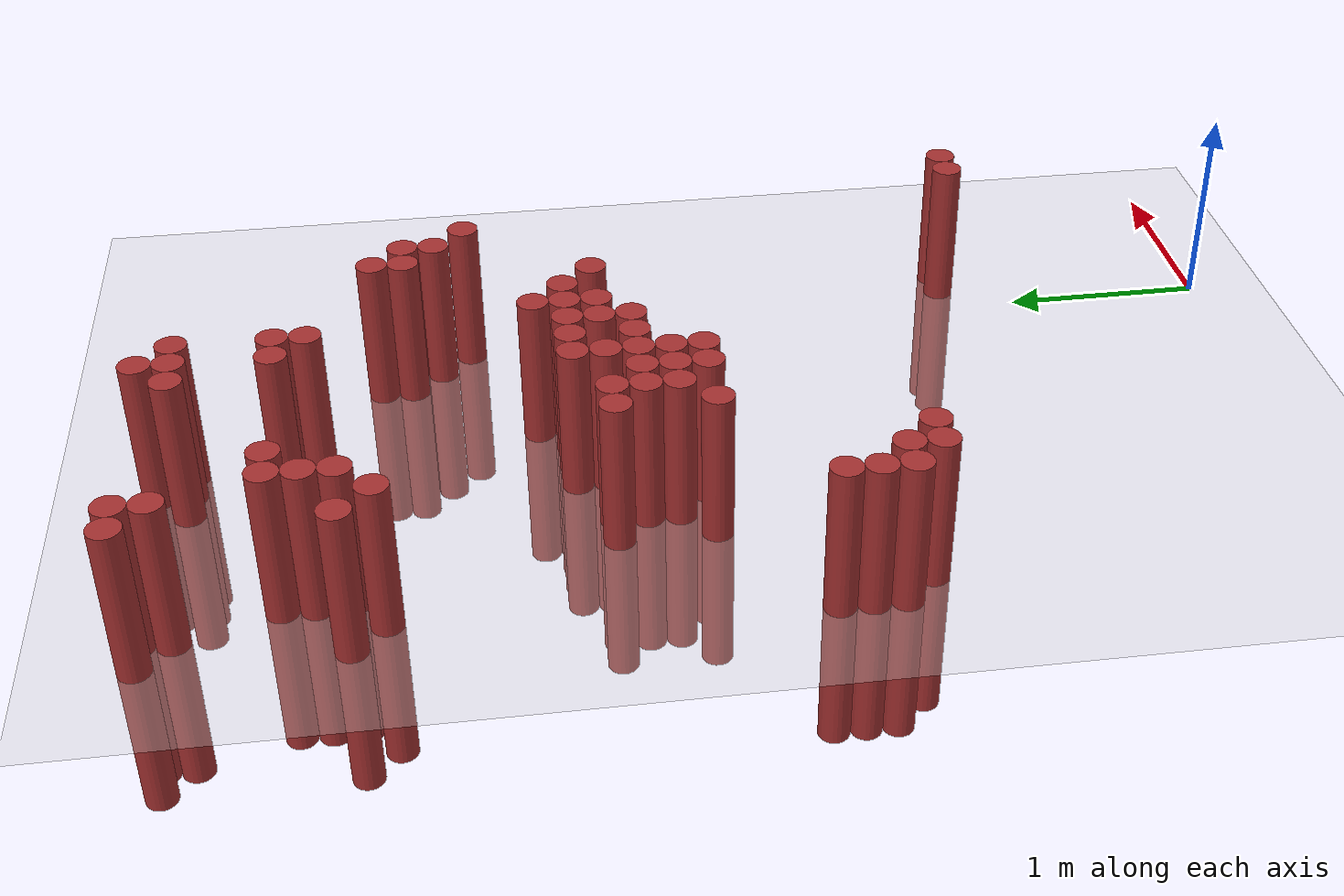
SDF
<sdf version="1.6">
 <world name="default">
  <model name="ground_plane">
   <static>1</static>
   <link name="link">
    <collision name="collision">
     <geometry><plane><normal>0 0 1</normal><size>100 100</size></plane></geometry>
     <surface><friction><ode><mu>100</mu><mu2>50</mu2></ode></friction></surface>
    </collision>
    <visual name="visual">
     <cast_shadows>0</cast_shadows>
     <geometry><plane><normal>0 0 1</normal><size>100 100</size></plane></geometry>
     <material>
      <script><uri>file://media/materials/scripts/gazebo.material</uri><name>Gazebo/Grey</name></script>
     </material>
    </visual>
   </link>
  </model>
  <model name="unit_cylinder_318">
   <static>1</static>
   <pose>-2.375000 2.125000 0.000000 0.000000 0.000000 0.000000</pose>
   <link name="link">
    <inertial>
     <mass>1</mass>
     <inertia><ixx>0.145833</ixx><ixy>0</ixy><ixz>0</ixz><iyy>0.145833</iyy><iyz>0</iyz><izz>0.125</izz></inertia>
    </inertial>
    <collision name="collision">
     <geometry><cylinder><radius>0.075000</radius><length>1.5</length></cylinder></geometry>
    </collision>
    <visual name="visual">
     <geometry><cylinder><radius>0.075000</radius><length>1.5</length></cylinder></geometry>
     <material>
      <ambient>0.648000 0.192000 0.192000 1</ambient>
      <diffuse>0.648000 0.192000 0.192000 1</diffuse>
     </material>
     <material>
      <script><name>Gazebo/Grey</name><uri>file://media/materials/scripts/gazebo.material</uri></script>
     </material>
    </visual>
   </link>
  </model>
  <model name="unit_cylinder_319">
   <static>1</static>
   <pose>-2.375000 2.275000 0.000000 0.000000 0.000000 0.000000</pose>
   <link name="link">
    <inertial>
     <mass>1</mass>
     <inertia><ixx>0.145833</ixx><ixy>0</ixy><ixz>0</ixz><iyy>0.145833</iyy><iyz>0</iyz><izz>0.125</izz></inertia>
    </inertial>
    <collision name="collision">
     <geometry><cylinder><radius>0.075000</radius><length>1.5</length></cylinder></geometry>
    </collision>
    <visual name="visual">
     <geometry><cylinder><radius>0.075000</radius><length>1.5</length></cylinder></geometry>
     <material>
      <ambient>0.648000 0.192000 0.192000 1</ambient>
      <diffuse>0.648000 0.192000 0.192000 1</diffuse>
     </material>
     <material>
      <script><name>Gazebo/Grey</name><uri>file://media/materials/scripts/gazebo.material</uri></script>
     </material>
    </visual>
   </link>
  </model>
  <model name="unit_cylinder_320">
   <static>1</static>
   <pose>-2.375000 2.425000 0.000000 0.000000 0.000000 0.000000</pose>
   <link name="link">
    <inertial>
     <mass>1</mass>
     <inertia><ixx>0.145833</ixx><ixy>0</ixy><ixz>0</ixz><iyy>0.145833</iyy><iyz>0</iyz><izz>0.125</izz></inertia>
    </inertial>
    <collision name="collision">
     <geometry><cylinder><radius>0.075000</radius><length>1.5</length></cylinder></geometry>
    </collision>
    <visual name="visual">
     <geometry><cylinder><radius>0.075000</radius><length>1.5</length></cylinder></geometry>
     <material>
      <ambient>0.648000 0.192000 0.192000 1</ambient>
      <diffuse>0.648000 0.192000 0.192000 1</diffuse>
     </material>
     <material>
      <script><name>Gazebo/Grey</name><uri>file://media/materials/scripts/gazebo.material</uri></script>
     </material>
    </visual>
   </link>
  </model>
  <model name="unit_cylinder_321">
   <static>1</static>
   <pose>-2.375000 4.525000 0.000000 0.000000 0.000000 0.000000</pose>
   <link name="link">
    <inertial>
     <mass>1</mass>
     <inertia><ixx>0.145833</ixx><ixy>0</ixy><ixz>0</ixz><iyy>0.145833</iyy><iyz>0</iyz><izz>0.125</izz></inertia>
    </inertial>
    <collision name="collision">
     <geometry><cylinder><radius>0.075000</radius><length>1.5</length></cylinder></geometry>
    </collision>
    <visual name="visual">
     <geometry><cylinder><radius>0.075000</radius><length>1.5</length></cylinder></geometry>
     <material>
      <ambient>0.648000 0.192000 0.192000 1</ambient>
      <diffuse>0.648000 0.192000 0.192000 1</diffuse>
     </material>
     <material>
      <script><name>Gazebo/Grey</name><uri>file://media/materials/scripts/gazebo.material</uri></script>
     </material>
    </visual>
   </link>
  </model>
  <model name="unit_cylinder_322">
   <static>1</static>
   <pose>-2.375000 5.425000 0.000000 0.000000 0.000000 0.000000</pose>
   <link name="link">
    <inertial>
     <mass>1</mass>
     <inertia><ixx>0.145833</ixx><ixy>0</ixy><ixz>0</ixz><iyy>0.145833</iyy><iyz>0</iyz><izz>0.125</izz></inertia>
    </inertial>
    <collision name="collision">
     <geometry><cylinder><radius>0.075000</radius><length>1.5</length></cylinder></geometry>
    </collision>
    <visual name="visual">
     <geometry><cylinder><radius>0.075000</radius><length>1.5</length></cylinder></geometry>
     <material>
      <ambient>0.648000 0.192000 0.192000 1</ambient>
      <diffuse>0.648000 0.192000 0.192000 1</diffuse>
     </material>
     <material>
      <script><name>Gazebo/Grey</name><uri>file://media/materials/scripts/gazebo.material</uri></script>
     </material>
    </visual>
   </link>
  </model>
  <model name="unit_cylinder_324">
   <static>1</static>
   <pose>-2.225000 1.975000 0.000000 0.000000 0.000000 0.000000</pose>
   <link name="link">
    <inertial>
     <mass>1</mass>
     <inertia><ixx>0.145833</ixx><ixy>0</ixy><ixz>0</ixz><iyy>0.145833</iyy><iyz>0</iyz><izz>0.125</izz></inertia>
    </inertial>
    <collision name="collision">
     <geometry><cylinder><radius>0.075000</radius><length>1.5</length></cylinder></geometry>
    </collision>
    <visual name="visual">
     <geometry><cylinder><radius>0.075000</radius><length>1.5</length></cylinder></geometry>
     <material>
      <ambient>0.648000 0.192000 0.192000 1</ambient>
      <diffuse>0.648000 0.192000 0.192000 1</diffuse>
     </material>
     <material>
      <script><name>Gazebo/Grey</name><uri>file://media/materials/scripts/gazebo.material</uri></script>
     </material>
    </visual>
   </link>
  </model>
  <model name="unit_cylinder_325">
   <static>1</static>
   <pose>-2.225000 2.125000 0.000000 0.000000 0.000000 0.000000</pose>
   <link name="link">
    <inertial>
     <mass>1</mass>
     <inertia><ixx>0.145833</ixx><ixy>0</ixy><ixz>0</ixz><iyy>0.145833</iyy><iyz>0</iyz><izz>0.125</izz></inertia>
    </inertial>
    <collision name="collision">
     <geometry><cylinder><radius>0.075000</radius><length>1.5</length></cylinder></geometry>
    </collision>
    <visual name="visual">
     <geometry><cylinder><radius>0.075000</radius><length>1.5</length></cylinder></geometry>
     <material>
      <ambient>0.648000 0.192000 0.192000 1</ambient>
      <diffuse>0.648000 0.192000 0.192000 1</diffuse>
     </material>
     <material>
      <script><name>Gazebo/Grey</name><uri>file://media/materials/scripts/gazebo.material</uri></script>
     </material>
    </visual>
   </link>
  </model>
  <model name="unit_cylinder_326">
   <static>1</static>
   <pose>-2.225000 4.375000 0.000000 0.000000 0.000000 0.000000</pose>
   <link name="link">
    <inertial>
     <mass>1</mass>
     <inertia><ixx>0.145833</ixx><ixy>0</ixy><ixz>0</ixz><iyy>0.145833</iyy><iyz>0</iyz><izz>0.125</izz></inertia>
    </inertial>
    <collision name="collision">
     <geometry><cylinder><radius>0.075000</radius><length>1.5</length></cylinder></geometry>
    </collision>
    <visual name="visual">
     <geometry><cylinder><radius>0.075000</radius><length>1.5</length></cylinder></geometry>
     <material>
      <ambient>0.648000 0.192000 0.192000 1</ambient>
      <diffuse>0.648000 0.192000 0.192000 1</diffuse>
     </material>
     <material>
      <script><name>Gazebo/Grey</name><uri>file://media/materials/scripts/gazebo.material</uri></script>
     </material>
    </visual>
   </link>
  </model>
  <model name="unit_cylinder_327">
   <static>1</static>
   <pose>-2.225000 5.275000 0.000000 0.000000 0.000000 0.000000</pose>
   <link name="link">
    <inertial>
     <mass>1</mass>
     <inertia><ixx>0.145833</ixx><ixy>0</ixy><ixz>0</ixz><iyy>0.145833</iyy><iyz>0</iyz><izz>0.125</izz></inertia>
    </inertial>
    <collision name="collision">
     <geometry><cylinder><radius>0.075000</radius><length>1.5</length></cylinder></geometry>
    </collision>
    <visual name="visual">
     <geometry><cylinder><radius>0.075000</radius><length>1.5</length></cylinder></geometry>
     <material>
      <ambient>0.648000 0.192000 0.192000 1</ambient>
      <diffuse>0.648000 0.192000 0.192000 1</diffuse>
     </material>
     <material>
      <script><name>Gazebo/Grey</name><uri>file://media/materials/scripts/gazebo.material</uri></script>
     </material>
    </visual>
   </link>
  </model>
  <model name="unit_cylinder_328">
   <static>1</static>
   <pose>-2.225000 5.425000 0.000000 0.000000 0.000000 0.000000</pose>
   <link name="link">
    <inertial>
     <mass>1</mass>
     <inertia><ixx>0.145833</ixx><ixy>0</ixy><ixz>0</ixz><iyy>0.145833</iyy><iyz>0</iyz><izz>0.125</izz></inertia>
    </inertial>
    <collision name="collision">
     <geometry><cylinder><radius>0.075000</radius><length>1.5</length></cylinder></geometry>
    </collision>
    <visual name="visual">
     <geometry><cylinder><radius>0.075000</radius><length>1.5</length></cylinder></geometry>
     <material>
      <ambient>0.648000 0.192000 0.192000 1</ambient>
      <diffuse>0.648000 0.192000 0.192000 1</diffuse>
     </material>
     <material>
      <script><name>Gazebo/Grey</name><uri>file://media/materials/scripts/gazebo.material</uri></script>
     </material>
    </visual>
   </link>
  </model>
  <model name="unit_cylinder_331">
   <static>1</static>
   <pose>-2.075000 1.975000 0.000000 0.000000 0.000000 0.000000</pose>
   <link name="link">
    <inertial>
     <mass>1</mass>
     <inertia><ixx>0.145833</ixx><ixy>0</ixy><ixz>0</ixz><iyy>0.145833</iyy><iyz>0</iyz><izz>0.125</izz></inertia>
    </inertial>
    <collision name="collision">
     <geometry><cylinder><radius>0.075000</radius><length>1.5</length></cylinder></geometry>
    </collision>
    <visual name="visual">
     <geometry><cylinder><radius>0.075000</radius><length>1.5</length></cylinder></geometry>
     <material>
      <ambient>0.648000 0.192000 0.192000 1</ambient>
      <diffuse>0.648000 0.192000 0.192000 1</diffuse>
     </material>
     <material>
      <script><name>Gazebo/Grey</name><uri>file://media/materials/scripts/gazebo.material</uri></script>
     </material>
    </visual>
   </link>
  </model>
  <model name="unit_cylinder_332">
   <static>1</static>
   <pose>-2.075000 4.525000 0.000000 0.000000 0.000000 0.000000</pose>
   <link name="link">
    <inertial>
     <mass>1</mass>
     <inertia><ixx>0.145833</ixx><ixy>0</ixy><ixz>0</ixz><iyy>0.145833</iyy><iyz>0</iyz><izz>0.125</izz></inertia>
    </inertial>
    <collision name="collision">
     <geometry><cylinder><radius>0.075000</radius><length>1.5</length></cylinder></geometry>
    </collision>
    <visual name="visual">
     <geometry><cylinder><radius>0.075000</radius><length>1.5</length></cylinder></geometry>
     <material>
      <ambient>0.648000 0.192000 0.192000 1</ambient>
      <diffuse>0.648000 0.192000 0.192000 1</diffuse>
     </material>
     <material>
      <script><name>Gazebo/Grey</name><uri>file://media/materials/scripts/gazebo.material</uri></script>
     </material>
    </visual>
   </link>
  </model>
  <model name="unit_cylinder_333">
   <static>1</static>
   <pose>-2.075000 4.675000 0.000000 0.000000 0.000000 0.000000</pose>
   <link name="link">
    <inertial>
     <mass>1</mass>
     <inertia><ixx>0.145833</ixx><ixy>0</ixy><ixz>0</ixz><iyy>0.145833</iyy><iyz>0</iyz><izz>0.125</izz></inertia>
    </inertial>
    <collision name="collision">
     <geometry><cylinder><radius>0.075000</radius><length>1.5</length></cylinder></geometry>
    </collision>
    <visual name="visual">
     <geometry><cylinder><radius>0.075000</radius><length>1.5</length></cylinder></geometry>
     <material>
      <ambient>0.648000 0.192000 0.192000 1</ambient>
      <diffuse>0.648000 0.192000 0.192000 1</diffuse>
     </material>
     <material>
      <script><name>Gazebo/Grey</name><uri>file://media/materials/scripts/gazebo.material</uri></script>
     </material>
    </visual>
   </link>
  </model>
  <model name="unit_cylinder_334">
   <static>1</static>
   <pose>-2.075000 4.825000 0.000000 0.000000 0.000000 0.000000</pose>
   <link name="link">
    <inertial>
     <mass>1</mass>
     <inertia><ixx>0.145833</ixx><ixy>0</ixy><ixz>0</ixz><iyy>0.145833</iyy><iyz>0</iyz><izz>0.125</izz></inertia>
    </inertial>
    <collision name="collision">
     <geometry><cylinder><radius>0.075000</radius><length>1.5</length></cylinder></geometry>
    </collision>
    <visual name="visual">
     <geometry><cylinder><radius>0.075000</radius><length>1.5</length></cylinder></geometry>
     <material>
      <ambient>0.648000 0.192000 0.192000 1</ambient>
      <diffuse>0.648000 0.192000 0.192000 1</diffuse>
     </material>
     <material>
      <script><name>Gazebo/Grey</name><uri>file://media/materials/scripts/gazebo.material</uri></script>
     </material>
    </visual>
   </link>
  </model>
  <model name="unit_cylinder_335">
   <static>1</static>
   <pose>-1.925000 4.825000 0.000000 0.000000 0.000000 0.000000</pose>
   <link name="link">
    <inertial>
     <mass>1</mass>
     <inertia><ixx>0.145833</ixx><ixy>0</ixy><ixz>0</ixz><iyy>0.145833</iyy><iyz>0</iyz><izz>0.125</izz></inertia>
    </inertial>
    <collision name="collision">
     <geometry><cylinder><radius>0.075000</radius><length>1.5</length></cylinder></geometry>
    </collision>
    <visual name="visual">
     <geometry><cylinder><radius>0.075000</radius><length>1.5</length></cylinder></geometry>
     <material>
      <ambient>0.648000 0.192000 0.192000 1</ambient>
      <diffuse>0.648000 0.192000 0.192000 1</diffuse>
     </material>
     <material>
      <script><name>Gazebo/Grey</name><uri>file://media/materials/scripts/gazebo.material</uri></script>
     </material>
    </visual>
   </link>
  </model>
  <model name="unit_cylinder_336">
   <static>1</static>
   <pose>-1.775000 2.875000 0.000000 0.000000 0.000000 0.000000</pose>
   <link name="link">
    <inertial>
     <mass>1</mass>
     <inertia><ixx>0.145833</ixx><ixy>0</ixy><ixz>0</ixz><iyy>0.145833</iyy><iyz>0</iyz><izz>0.125</izz></inertia>
    </inertial>
    <collision name="collision">
     <geometry><cylinder><radius>0.075000</radius><length>1.5</length></cylinder></geometry>
    </collision>
    <visual name="visual">
     <geometry><cylinder><radius>0.075000</radius><length>1.5</length></cylinder></geometry>
     <material>
      <ambient>0.648000 0.192000 0.192000 1</ambient>
      <diffuse>0.648000 0.192000 0.192000 1</diffuse>
     </material>
     <material>
      <script><name>Gazebo/Grey</name><uri>file://media/materials/scripts/gazebo.material</uri></script>
     </material>
    </visual>
   </link>
  </model>
  <model name="unit_cylinder_337">
   <static>1</static>
   <pose>-1.775000 3.325000 0.000000 0.000000 0.000000 0.000000</pose>
   <link name="link">
    <inertial>
     <mass>1</mass>
     <inertia><ixx>0.145833</ixx><ixy>0</ixy><ixz>0</ixz><iyy>0.145833</iyy><iyz>0</iyz><izz>0.125</izz></inertia>
    </inertial>
    <collision name="collision">
     <geometry><cylinder><radius>0.075000</radius><length>1.5</length></cylinder></geometry>
    </collision>
    <visual name="visual">
     <geometry><cylinder><radius>0.075000</radius><length>1.5</length></cylinder></geometry>
     <material>
      <ambient>0.648000 0.192000 0.192000 1</ambient>
      <diffuse>0.648000 0.192000 0.192000 1</diffuse>
     </material>
     <material>
      <script><name>Gazebo/Grey</name><uri>file://media/materials/scripts/gazebo.material</uri></script>
     </material>
    </visual>
   </link>
  </model>
  <model name="unit_cylinder_338">
   <static>1</static>
   <pose>-1.625000 3.025000 0.000000 0.000000 0.000000 0.000000</pose>
   <link name="link">
    <inertial>
     <mass>1</mass>
     <inertia><ixx>0.145833</ixx><ixy>0</ixy><ixz>0</ixz><iyy>0.145833</iyy><iyz>0</iyz><izz>0.125</izz></inertia>
    </inertial>
    <collision name="collision">
     <geometry><cylinder><radius>0.075000</radius><length>1.5</length></cylinder></geometry>
    </collision>
    <visual name="visual">
     <geometry><cylinder><radius>0.075000</radius><length>1.5</length></cylinder></geometry>
     <material>
      <ambient>0.648000 0.192000 0.192000 1</ambient>
      <diffuse>0.648000 0.192000 0.192000 1</diffuse>
     </material>
     <material>
      <script><name>Gazebo/Grey</name><uri>file://media/materials/scripts/gazebo.material</uri></script>
     </material>
    </visual>
   </link>
  </model>
  <model name="unit_cylinder_339">
   <static>1</static>
   <pose>-1.625000 3.175000 0.000000 0.000000 0.000000 0.000000</pose>
   <link name="link">
    <inertial>
     <mass>1</mass>
     <inertia><ixx>0.145833</ixx><ixy>0</ixy><ixz>0</ixz><iyy>0.145833</iyy><iyz>0</iyz><izz>0.125</izz></inertia>
    </inertial>
    <collision name="collision">
     <geometry><cylinder><radius>0.075000</radius><length>1.5</length></cylinder></geometry>
    </collision>
    <visual name="visual">
     <geometry><cylinder><radius>0.075000</radius><length>1.5</length></cylinder></geometry>
     <material>
      <ambient>0.648000 0.192000 0.192000 1</ambient>
      <diffuse>0.648000 0.192000 0.192000 1</diffuse>
     </material>
     <material>
      <script><name>Gazebo/Grey</name><uri>file://media/materials/scripts/gazebo.material</uri></script>
     </material>
    </visual>
   </link>
  </model>
  <model name="unit_cylinder_340">
   <static>1</static>
   <pose>-1.625000 3.325000 0.000000 0.000000 0.000000 0.000000</pose>
   <link name="link">
    <inertial>
     <mass>1</mass>
     <inertia><ixx>0.145833</ixx><ixy>0</ixy><ixz>0</ixz><iyy>0.145833</iyy><iyz>0</iyz><izz>0.125</izz></inertia>
    </inertial>
    <collision name="collision">
     <geometry><cylinder><radius>0.075000</radius><length>1.5</length></cylinder></geometry>
    </collision>
    <visual name="visual">
     <geometry><cylinder><radius>0.075000</radius><length>1.5</length></cylinder></geometry>
     <material>
      <ambient>0.648000 0.192000 0.192000 1</ambient>
      <diffuse>0.648000 0.192000 0.192000 1</diffuse>
     </material>
     <material>
      <script><name>Gazebo/Grey</name><uri>file://media/materials/scripts/gazebo.material</uri></script>
     </material>
    </visual>
   </link>
  </model>
  <model name="unit_cylinder_341">
   <static>1</static>
   <pose>-1.475000 2.875000 0.000000 0.000000 0.000000 0.000000</pose>
   <link name="link">
    <inertial>
     <mass>1</mass>
     <inertia><ixx>0.145833</ixx><ixy>0</ixy><ixz>0</ixz><iyy>0.145833</iyy><iyz>0</iyz><izz>0.125</izz></inertia>
    </inertial>
    <collision name="collision">
     <geometry><cylinder><radius>0.075000</radius><length>1.5</length></cylinder></geometry>
    </collision>
    <visual name="visual">
     <geometry><cylinder><radius>0.075000</radius><length>1.5</length></cylinder></geometry>
     <material>
      <ambient>0.648000 0.192000 0.192000 1</ambient>
      <diffuse>0.648000 0.192000 0.192000 1</diffuse>
     </material>
     <material>
      <script><name>Gazebo/Grey</name><uri>file://media/materials/scripts/gazebo.material</uri></script>
     </material>
    </visual>
   </link>
  </model>
  <model name="unit_cylinder_342">
   <static>1</static>
   <pose>-1.475000 3.025000 0.000000 0.000000 0.000000 0.000000</pose>
   <link name="link">
    <inertial>
     <mass>1</mass>
     <inertia><ixx>0.145833</ixx><ixy>0</ixy><ixz>0</ixz><iyy>0.145833</iyy><iyz>0</iyz><izz>0.125</izz></inertia>
    </inertial>
    <collision name="collision">
     <geometry><cylinder><radius>0.075000</radius><length>1.5</length></cylinder></geometry>
    </collision>
    <visual name="visual">
     <geometry><cylinder><radius>0.075000</radius><length>1.5</length></cylinder></geometry>
     <material>
      <ambient>0.648000 0.192000 0.192000 1</ambient>
      <diffuse>0.648000 0.192000 0.192000 1</diffuse>
     </material>
     <material>
      <script><name>Gazebo/Grey</name><uri>file://media/materials/scripts/gazebo.material</uri></script>
     </material>
    </visual>
   </link>
  </model>
  <model name="unit_cylinder_343">
   <static>1</static>
   <pose>-1.475000 3.175000 0.000000 0.000000 0.000000 0.000000</pose>
   <link name="link">
    <inertial>
     <mass>1</mass>
     <inertia><ixx>0.145833</ixx><ixy>0</ixy><ixz>0</ixz><iyy>0.145833</iyy><iyz>0</iyz><izz>0.125</izz></inertia>
    </inertial>
    <collision name="collision">
     <geometry><cylinder><radius>0.075000</radius><length>1.5</length></cylinder></geometry>
    </collision>
    <visual name="visual">
     <geometry><cylinder><radius>0.075000</radius><length>1.5</length></cylinder></geometry>
     <material>
      <ambient>0.648000 0.192000 0.192000 1</ambient>
      <diffuse>0.648000 0.192000 0.192000 1</diffuse>
     </material>
     <material>
      <script><name>Gazebo/Grey</name><uri>file://media/materials/scripts/gazebo.material</uri></script>
     </material>
    </visual>
   </link>
  </model>
  <model name="unit_cylinder_344">
   <static>1</static>
   <pose>-1.325000 2.875000 0.000000 0.000000 0.000000 0.000000</pose>
   <link name="link">
    <inertial>
     <mass>1</mass>
     <inertia><ixx>0.145833</ixx><ixy>0</ixy><ixz>0</ixz><iyy>0.145833</iyy><iyz>0</iyz><izz>0.125</izz></inertia>
    </inertial>
    <collision name="collision">
     <geometry><cylinder><radius>0.075000</radius><length>1.5</length></cylinder></geometry>
    </collision>
    <visual name="visual">
     <geometry><cylinder><radius>0.075000</radius><length>1.5</length></cylinder></geometry>
     <material>
      <ambient>0.648000 0.192000 0.192000 1</ambient>
      <diffuse>0.648000 0.192000 0.192000 1</diffuse>
     </material>
     <material>
      <script><name>Gazebo/Grey</name><uri>file://media/materials/scripts/gazebo.material</uri></script>
     </material>
    </visual>
   </link>
  </model>
  <model name="unit_cylinder_345">
   <static>1</static>
   <pose>-1.325000 3.025000 0.000000 0.000000 0.000000 0.000000</pose>
   <link name="link">
    <inertial>
     <mass>1</mass>
     <inertia><ixx>0.145833</ixx><ixy>0</ixy><ixz>0</ixz><iyy>0.145833</iyy><iyz>0</iyz><izz>0.125</izz></inertia>
    </inertial>
    <collision name="collision">
     <geometry><cylinder><radius>0.075000</radius><length>1.5</length></cylinder></geometry>
    </collision>
    <visual name="visual">
     <geometry><cylinder><radius>0.075000</radius><length>1.5</length></cylinder></geometry>
     <material>
      <ambient>0.648000 0.192000 0.192000 1</ambient>
      <diffuse>0.648000 0.192000 0.192000 1</diffuse>
     </material>
     <material>
      <script><name>Gazebo/Grey</name><uri>file://media/materials/scripts/gazebo.material</uri></script>
     </material>
    </visual>
   </link>
  </model>
  <model name="unit_cylinder_346">
   <static>1</static>
   <pose>-1.325000 3.175000 0.000000 0.000000 0.000000 0.000000</pose>
   <link name="link">
    <inertial>
     <mass>1</mass>
     <inertia><ixx>0.145833</ixx><ixy>0</ixy><ixz>0</ixz><iyy>0.145833</iyy><iyz>0</iyz><izz>0.125</izz></inertia>
    </inertial>
    <collision name="collision">
     <geometry><cylinder><radius>0.075000</radius><length>1.5</length></cylinder></geometry>
    </collision>
    <visual name="visual">
     <geometry><cylinder><radius>0.075000</radius><length>1.5</length></cylinder></geometry>
     <material>
      <ambient>0.648000 0.192000 0.192000 1</ambient>
      <diffuse>0.648000 0.192000 0.192000 1</diffuse>
     </material>
     <material>
      <script><name>Gazebo/Grey</name><uri>file://media/materials/scripts/gazebo.material</uri></script>
     </material>
    </visual>
   </link>
  </model>
  <model name="unit_cylinder_347">
   <static>1</static>
   <pose>-1.325000 3.325000 0.000000 0.000000 0.000000 0.000000</pose>
   <link name="link">
    <inertial>
     <mass>1</mass>
     <inertia><ixx>0.145833</ixx><ixy>0</ixy><ixz>0</ixz><iyy>0.145833</iyy><iyz>0</iyz><izz>0.125</izz></inertia>
    </inertial>
    <collision name="collision">
     <geometry><cylinder><radius>0.075000</radius><length>1.5</length></cylinder></geometry>
    </collision>
    <visual name="visual">
     <geometry><cylinder><radius>0.075000</radius><length>1.5</length></cylinder></geometry>
     <material>
      <ambient>0.648000 0.192000 0.192000 1</ambient>
      <diffuse>0.648000 0.192000 0.192000 1</diffuse>
     </material>
     <material>
      <script><name>Gazebo/Grey</name><uri>file://media/materials/scripts/gazebo.material</uri></script>
     </material>
    </visual>
   </link>
  </model>
  <model name="unit_cylinder_348">
   <static>1</static>
   <pose>-1.325000 3.475000 0.000000 0.000000 0.000000 0.000000</pose>
   <link name="link">
    <inertial>
     <mass>1</mass>
     <inertia><ixx>0.145833</ixx><ixy>0</ixy><ixz>0</ixz><iyy>0.145833</iyy><iyz>0</iyz><izz>0.125</izz></inertia>
    </inertial>
    <collision name="collision">
     <geometry><cylinder><radius>0.075000</radius><length>1.5</length></cylinder></geometry>
    </collision>
    <visual name="visual">
     <geometry><cylinder><radius>0.075000</radius><length>1.5</length></cylinder></geometry>
     <material>
      <ambient>0.648000 0.192000 0.192000 1</ambient>
      <diffuse>0.648000 0.192000 0.192000 1</diffuse>
     </material>
     <material>
      <script><name>Gazebo/Grey</name><uri>file://media/materials/scripts/gazebo.material</uri></script>
     </material>
    </visual>
   </link>
  </model>
  <model name="unit_cylinder_349">
   <static>1</static>
   <pose>-1.325000 5.275000 0.000000 0.000000 0.000000 0.000000</pose>
   <link name="link">
    <inertial>
     <mass>1</mass>
     <inertia><ixx>0.145833</ixx><ixy>0</ixy><ixz>0</ixz><iyy>0.145833</iyy><iyz>0</iyz><izz>0.125</izz></inertia>
    </inertial>
    <collision name="collision">
     <geometry><cylinder><radius>0.075000</radius><length>1.5</length></cylinder></geometry>
    </collision>
    <visual name="visual">
     <geometry><cylinder><radius>0.075000</radius><length>1.5</length></cylinder></geometry>
     <material>
      <ambient>0.648000 0.192000 0.192000 1</ambient>
      <diffuse>0.648000 0.192000 0.192000 1</diffuse>
     </material>
     <material>
      <script><name>Gazebo/Grey</name><uri>file://media/materials/scripts/gazebo.material</uri></script>
     </material>
    </visual>
   </link>
  </model>
  <model name="unit_cylinder_350">
   <static>1</static>
   <pose>-1.175000 3.175000 0.000000 0.000000 0.000000 0.000000</pose>
   <link name="link">
    <inertial>
     <mass>1</mass>
     <inertia><ixx>0.145833</ixx><ixy>0</ixy><ixz>0</ixz><iyy>0.145833</iyy><iyz>0</iyz><izz>0.125</izz></inertia>
    </inertial>
    <collision name="collision">
     <geometry><cylinder><radius>0.075000</radius><length>1.5</length></cylinder></geometry>
    </collision>
    <visual name="visual">
     <geometry><cylinder><radius>0.075000</radius><length>1.5</length></cylinder></geometry>
     <material>
      <ambient>0.648000 0.192000 0.192000 1</ambient>
      <diffuse>0.648000 0.192000 0.192000 1</diffuse>
     </material>
     <material>
      <script><name>Gazebo/Grey</name><uri>file://media/materials/scripts/gazebo.material</uri></script>
     </material>
    </visual>
   </link>
  </model>
  <model name="unit_cylinder_351">
   <static>1</static>
   <pose>-1.175000 3.475000 0.000000 0.000000 0.000000 0.000000</pose>
   <link name="link">
    <inertial>
     <mass>1</mass>
     <inertia><ixx>0.145833</ixx><ixy>0</ixy><ixz>0</ixz><iyy>0.145833</iyy><iyz>0</iyz><izz>0.125</izz></inertia>
    </inertial>
    <collision name="collision">
     <geometry><cylinder><radius>0.075000</radius><length>1.5</length></cylinder></geometry>
    </collision>
    <visual name="visual">
     <geometry><cylinder><radius>0.075000</radius><length>1.5</length></cylinder></geometry>
     <material>
      <ambient>0.648000 0.192000 0.192000 1</ambient>
      <diffuse>0.648000 0.192000 0.192000 1</diffuse>
     </material>
     <material>
      <script><name>Gazebo/Grey</name><uri>file://media/materials/scripts/gazebo.material</uri></script>
     </material>
    </visual>
   </link>
  </model>
  <model name="unit_cylinder_352">
   <static>1</static>
   <pose>-1.175000 4.825000 0.000000 0.000000 0.000000 0.000000</pose>
   <link name="link">
    <inertial>
     <mass>1</mass>
     <inertia><ixx>0.145833</ixx><ixy>0</ixy><ixz>0</ixz><iyy>0.145833</iyy><iyz>0</iyz><izz>0.125</izz></inertia>
    </inertial>
    <collision name="collision">
     <geometry><cylinder><radius>0.075000</radius><length>1.5</length></cylinder></geometry>
    </collision>
    <visual name="visual">
     <geometry><cylinder><radius>0.075000</radius><length>1.5</length></cylinder></geometry>
     <material>
      <ambient>0.648000 0.192000 0.192000 1</ambient>
      <diffuse>0.648000 0.192000 0.192000 1</diffuse>
     </material>
     <material>
      <script><name>Gazebo/Grey</name><uri>file://media/materials/scripts/gazebo.material</uri></script>
     </material>
    </visual>
   </link>
  </model>
  <model name="unit_cylinder_353">
   <static>1</static>
   <pose>-1.175000 5.275000 0.000000 0.000000 0.000000 0.000000</pose>
   <link name="link">
    <inertial>
     <mass>1</mass>
     <inertia><ixx>0.145833</ixx><ixy>0</ixy><ixz>0</ixz><iyy>0.145833</iyy><iyz>0</iyz><izz>0.125</izz></inertia>
    </inertial>
    <collision name="collision">
     <geometry><cylinder><radius>0.075000</radius><length>1.5</length></cylinder></geometry>
    </collision>
    <visual name="visual">
     <geometry><cylinder><radius>0.075000</radius><length>1.5</length></cylinder></geometry>
     <material>
      <ambient>0.648000 0.192000 0.192000 1</ambient>
      <diffuse>0.648000 0.192000 0.192000 1</diffuse>
     </material>
     <material>
      <script><name>Gazebo/Grey</name><uri>file://media/materials/scripts/gazebo.material</uri></script>
     </material>
    </visual>
   </link>
  </model>
  <model name="unit_cylinder_354">
   <static>1</static>
   <pose>-1.175000 5.425000 0.000000 0.000000 0.000000 0.000000</pose>
   <link name="link">
    <inertial>
     <mass>1</mass>
     <inertia><ixx>0.145833</ixx><ixy>0</ixy><ixz>0</ixz><iyy>0.145833</iyy><iyz>0</iyz><izz>0.125</izz></inertia>
    </inertial>
    <collision name="collision">
     <geometry><cylinder><radius>0.075000</radius><length>1.5</length></cylinder></geometry>
    </collision>
    <visual name="visual">
     <geometry><cylinder><radius>0.075000</radius><length>1.5</length></cylinder></geometry>
     <material>
      <ambient>0.648000 0.192000 0.192000 1</ambient>
      <diffuse>0.648000 0.192000 0.192000 1</diffuse>
     </material>
     <material>
      <script><name>Gazebo/Grey</name><uri>file://media/materials/scripts/gazebo.material</uri></script>
     </material>
    </visual>
   </link>
  </model>
  <model name="unit_cylinder_355">
   <static>1</static>
   <pose>-1.025000 3.175000 0.000000 0.000000 0.000000 0.000000</pose>
   <link name="link">
    <inertial>
     <mass>1</mass>
     <inertia><ixx>0.145833</ixx><ixy>0</ixy><ixz>0</ixz><iyy>0.145833</iyy><iyz>0</iyz><izz>0.125</izz></inertia>
    </inertial>
    <collision name="collision">
     <geometry><cylinder><radius>0.075000</radius><length>1.5</length></cylinder></geometry>
    </collision>
    <visual name="visual">
     <geometry><cylinder><radius>0.075000</radius><length>1.5</length></cylinder></geometry>
     <material>
      <ambient>0.648000 0.192000 0.192000 1</ambient>
      <diffuse>0.648000 0.192000 0.192000 1</diffuse>
     </material>
     <material>
      <script><name>Gazebo/Grey</name><uri>file://media/materials/scripts/gazebo.material</uri></script>
     </material>
    </visual>
   </link>
  </model>
  <model name="unit_cylinder_356">
   <static>1</static>
   <pose>-1.025000 3.325000 0.000000 0.000000 0.000000 0.000000</pose>
   <link name="link">
    <inertial>
     <mass>1</mass>
     <inertia><ixx>0.145833</ixx><ixy>0</ixy><ixz>0</ixz><iyy>0.145833</iyy><iyz>0</iyz><izz>0.125</izz></inertia>
    </inertial>
    <collision name="collision">
     <geometry><cylinder><radius>0.075000</radius><length>1.5</length></cylinder></geometry>
    </collision>
    <visual name="visual">
     <geometry><cylinder><radius>0.075000</radius><length>1.5</length></cylinder></geometry>
     <material>
      <ambient>0.648000 0.192000 0.192000 1</ambient>
      <diffuse>0.648000 0.192000 0.192000 1</diffuse>
     </material>
     <material>
      <script><name>Gazebo/Grey</name><uri>file://media/materials/scripts/gazebo.material</uri></script>
     </material>
    </visual>
   </link>
  </model>
  <model name="unit_cylinder_357">
   <static>1</static>
   <pose>-1.025000 3.475000 0.000000 0.000000 0.000000 0.000000</pose>
   <link name="link">
    <inertial>
     <mass>1</mass>
     <inertia><ixx>0.145833</ixx><ixy>0</ixy><ixz>0</ixz><iyy>0.145833</iyy><iyz>0</iyz><izz>0.125</izz></inertia>
    </inertial>
    <collision name="collision">
     <geometry><cylinder><radius>0.075000</radius><length>1.5</length></cylinder></geometry>
    </collision>
    <visual name="visual">
     <geometry><cylinder><radius>0.075000</radius><length>1.5</length></cylinder></geometry>
     <material>
      <ambient>0.648000 0.192000 0.192000 1</ambient>
      <diffuse>0.648000 0.192000 0.192000 1</diffuse>
     </material>
     <material>
      <script><name>Gazebo/Grey</name><uri>file://media/materials/scripts/gazebo.material</uri></script>
     </material>
    </visual>
   </link>
  </model>
  <model name="unit_cylinder_358">
   <static>1</static>
   <pose>-1.025000 4.675000 0.000000 0.000000 0.000000 0.000000</pose>
   <link name="link">
    <inertial>
     <mass>1</mass>
     <inertia><ixx>0.145833</ixx><ixy>0</ixy><ixz>0</ixz><iyy>0.145833</iyy><iyz>0</iyz><izz>0.125</izz></inertia>
    </inertial>
    <collision name="collision">
     <geometry><cylinder><radius>0.075000</radius><length>1.5</length></cylinder></geometry>
    </collision>
    <visual name="visual">
     <geometry><cylinder><radius>0.075000</radius><length>1.5</length></cylinder></geometry>
     <material>
      <ambient>0.648000 0.192000 0.192000 1</ambient>
      <diffuse>0.648000 0.192000 0.192000 1</diffuse>
     </material>
     <material>
      <script><name>Gazebo/Grey</name><uri>file://media/materials/scripts/gazebo.material</uri></script>
     </material>
    </visual>
   </link>
  </model>
  <model name="unit_cylinder_359">
   <static>1</static>
   <pose>-1.025000 4.825000 0.000000 0.000000 0.000000 0.000000</pose>
   <link name="link">
    <inertial>
     <mass>1</mass>
     <inertia><ixx>0.145833</ixx><ixy>0</ixy><ixz>0</ixz><iyy>0.145833</iyy><iyz>0</iyz><izz>0.125</izz></inertia>
    </inertial>
    <collision name="collision">
     <geometry><cylinder><radius>0.075000</radius><length>1.5</length></cylinder></geometry>
    </collision>
    <visual name="visual">
     <geometry><cylinder><radius>0.075000</radius><length>1.5</length></cylinder></geometry>
     <material>
      <ambient>0.648000 0.192000 0.192000 1</ambient>
      <diffuse>0.648000 0.192000 0.192000 1</diffuse>
     </material>
     <material>
      <script><name>Gazebo/Grey</name><uri>file://media/materials/scripts/gazebo.material</uri></script>
     </material>
    </visual>
   </link>
  </model>
  <model name="unit_cylinder_360">
   <static>1</static>
   <pose>-1.025000 5.275000 0.000000 0.000000 0.000000 0.000000</pose>
   <link name="link">
    <inertial>
     <mass>1</mass>
     <inertia><ixx>0.145833</ixx><ixy>0</ixy><ixz>0</ixz><iyy>0.145833</iyy><iyz>0</iyz><izz>0.125</izz></inertia>
    </inertial>
    <collision name="collision">
     <geometry><cylinder><radius>0.075000</radius><length>1.5</length></cylinder></geometry>
    </collision>
    <visual name="visual">
     <geometry><cylinder><radius>0.075000</radius><length>1.5</length></cylinder></geometry>
     <material>
      <ambient>0.648000 0.192000 0.192000 1</ambient>
      <diffuse>0.648000 0.192000 0.192000 1</diffuse>
     </material>
     <material>
      <script><name>Gazebo/Grey</name><uri>file://media/materials/scripts/gazebo.material</uri></script>
     </material>
    </visual>
   </link>
  </model>
  <model name="unit_cylinder_362">
   <static>1</static>
   <pose>-0.875000 3.325000 0.000000 0.000000 0.000000 0.000000</pose>
   <link name="link">
    <inertial>
     <mass>1</mass>
     <inertia><ixx>0.145833</ixx><ixy>0</ixy><ixz>0</ixz><iyy>0.145833</iyy><iyz>0</iyz><izz>0.125</izz></inertia>
    </inertial>
    <collision name="collision">
     <geometry><cylinder><radius>0.075000</radius><length>1.5</length></cylinder></geometry>
    </collision>
    <visual name="visual">
     <geometry><cylinder><radius>0.075000</radius><length>1.5</length></cylinder></geometry>
     <material>
      <ambient>0.648000 0.192000 0.192000 1</ambient>
      <diffuse>0.648000 0.192000 0.192000 1</diffuse>
     </material>
     <material>
      <script><name>Gazebo/Grey</name><uri>file://media/materials/scripts/gazebo.material</uri></script>
     </material>
    </visual>
   </link>
  </model>
  <model name="unit_cylinder_363">
   <static>1</static>
   <pose>-0.875000 3.475000 0.000000 0.000000 0.000000 0.000000</pose>
   <link name="link">
    <inertial>
     <mass>1</mass>
     <inertia><ixx>0.145833</ixx><ixy>0</ixy><ixz>0</ixz><iyy>0.145833</iyy><iyz>0</iyz><izz>0.125</izz></inertia>
    </inertial>
    <collision name="collision">
     <geometry><cylinder><radius>0.075000</radius><length>1.5</length></cylinder></geometry>
    </collision>
    <visual name="visual">
     <geometry><cylinder><radius>0.075000</radius><length>1.5</length></cylinder></geometry>
     <material>
      <ambient>0.648000 0.192000 0.192000 1</ambient>
      <diffuse>0.648000 0.192000 0.192000 1</diffuse>
     </material>
     <material>
      <script><name>Gazebo/Grey</name><uri>file://media/materials/scripts/gazebo.material</uri></script>
     </material>
    </visual>
   </link>
  </model>
  <model name="unit_cylinder_364">
   <static>1</static>
   <pose>-0.875000 3.625000 0.000000 0.000000 0.000000 0.000000</pose>
   <link name="link">
    <inertial>
     <mass>1</mass>
     <inertia><ixx>0.145833</ixx><ixy>0</ixy><ixz>0</ixz><iyy>0.145833</iyy><iyz>0</iyz><izz>0.125</izz></inertia>
    </inertial>
    <collision name="collision">
     <geometry><cylinder><radius>0.075000</radius><length>1.5</length></cylinder></geometry>
    </collision>
    <visual name="visual">
     <geometry><cylinder><radius>0.075000</radius><length>1.5</length></cylinder></geometry>
     <material>
      <ambient>0.648000 0.192000 0.192000 1</ambient>
      <diffuse>0.648000 0.192000 0.192000 1</diffuse>
     </material>
     <material>
      <script><name>Gazebo/Grey</name><uri>file://media/materials/scripts/gazebo.material</uri></script>
     </material>
    </visual>
   </link>
  </model>
  <model name="unit_cylinder_367">
   <static>1</static>
   <pose>-0.725000 3.475000 0.000000 0.000000 0.000000 0.000000</pose>
   <link name="link">
    <inertial>
     <mass>1</mass>
     <inertia><ixx>0.145833</ixx><ixy>0</ixy><ixz>0</ixz><iyy>0.145833</iyy><iyz>0</iyz><izz>0.125</izz></inertia>
    </inertial>
    <collision name="collision">
     <geometry><cylinder><radius>0.075000</radius><length>1.5</length></cylinder></geometry>
    </collision>
    <visual name="visual">
     <geometry><cylinder><radius>0.075000</radius><length>1.5</length></cylinder></geometry>
     <material>
      <ambient>0.648000 0.192000 0.192000 1</ambient>
      <diffuse>0.648000 0.192000 0.192000 1</diffuse>
     </material>
     <material>
      <script><name>Gazebo/Grey</name><uri>file://media/materials/scripts/gazebo.material</uri></script>
     </material>
    </visual>
   </link>
  </model>
  <model name="unit_cylinder_371">
   <static>1</static>
   <pose>-0.575000 3.325000 0.000000 0.000000 0.000000 0.000000</pose>
   <link name="link">
    <inertial>
     <mass>1</mass>
     <inertia><ixx>0.145833</ixx><ixy>0</ixy><ixz>0</ixz><iyy>0.145833</iyy><iyz>0</iyz><izz>0.125</izz></inertia>
    </inertial>
    <collision name="collision">
     <geometry><cylinder><radius>0.075000</radius><length>1.5</length></cylinder></geometry>
    </collision>
    <visual name="visual">
     <geometry><cylinder><radius>0.075000</radius><length>1.5</length></cylinder></geometry>
     <material>
      <ambient>0.648000 0.192000 0.192000 1</ambient>
      <diffuse>0.648000 0.192000 0.192000 1</diffuse>
     </material>
     <material>
      <script><name>Gazebo/Grey</name><uri>file://media/materials/scripts/gazebo.material</uri></script>
     </material>
    </visual>
   </link>
  </model>
  <model name="unit_cylinder_374">
   <static>1</static>
   <pose>-0.425000 4.225000 0.000000 0.000000 0.000000 0.000000</pose>
   <link name="link">
    <inertial>
     <mass>1</mass>
     <inertia><ixx>0.145833</ixx><ixy>0</ixy><ixz>0</ixz><iyy>0.145833</iyy><iyz>0</iyz><izz>0.125</izz></inertia>
    </inertial>
    <collision name="collision">
     <geometry><cylinder><radius>0.075000</radius><length>1.5</length></cylinder></geometry>
    </collision>
    <visual name="visual">
     <geometry><cylinder><radius>0.075000</radius><length>1.5</length></cylinder></geometry>
     <material>
      <ambient>0.648000 0.192000 0.192000 1</ambient>
      <diffuse>0.648000 0.192000 0.192000 1</diffuse>
     </material>
     <material>
      <script><name>Gazebo/Grey</name><uri>file://media/materials/scripts/gazebo.material</uri></script>
     </material>
    </visual>
   </link>
  </model>
  <model name="unit_cylinder_375">
   <static>1</static>
   <pose>-0.425000 4.375000 0.000000 0.000000 0.000000 0.000000</pose>
   <link name="link">
    <inertial>
     <mass>1</mass>
     <inertia><ixx>0.145833</ixx><ixy>0</ixy><ixz>0</ixz><iyy>0.145833</iyy><iyz>0</iyz><izz>0.125</izz></inertia>
    </inertial>
    <collision name="collision">
     <geometry><cylinder><radius>0.075000</radius><length>1.5</length></cylinder></geometry>
    </collision>
    <visual name="visual">
     <geometry><cylinder><radius>0.075000</radius><length>1.5</length></cylinder></geometry>
     <material>
      <ambient>0.648000 0.192000 0.192000 1</ambient>
      <diffuse>0.648000 0.192000 0.192000 1</diffuse>
     </material>
     <material>
      <script><name>Gazebo/Grey</name><uri>file://media/materials/scripts/gazebo.material</uri></script>
     </material>
    </visual>
   </link>
  </model>
  <model name="unit_cylinder_376">
   <static>1</static>
   <pose>-0.275000 4.075000 0.000000 0.000000 0.000000 0.000000</pose>
   <link name="link">
    <inertial>
     <mass>1</mass>
     <inertia><ixx>0.145833</ixx><ixy>0</ixy><ixz>0</ixz><iyy>0.145833</iyy><iyz>0</iyz><izz>0.125</izz></inertia>
    </inertial>
    <collision name="collision">
     <geometry><cylinder><radius>0.075000</radius><length>1.5</length></cylinder></geometry>
    </collision>
    <visual name="visual">
     <geometry><cylinder><radius>0.075000</radius><length>1.5</length></cylinder></geometry>
     <material>
      <ambient>0.648000 0.192000 0.192000 1</ambient>
      <diffuse>0.648000 0.192000 0.192000 1</diffuse>
     </material>
     <material>
      <script><name>Gazebo/Grey</name><uri>file://media/materials/scripts/gazebo.material</uri></script>
     </material>
    </visual>
   </link>
  </model>
  <model name="unit_cylinder_377">
   <static>1</static>
   <pose>-0.275000 4.225000 0.000000 0.000000 0.000000 0.000000</pose>
   <link name="link">
    <inertial>
     <mass>1</mass>
     <inertia><ixx>0.145833</ixx><ixy>0</ixy><ixz>0</ixz><iyy>0.145833</iyy><iyz>0</iyz><izz>0.125</izz></inertia>
    </inertial>
    <collision name="collision">
     <geometry><cylinder><radius>0.075000</radius><length>1.5</length></cylinder></geometry>
    </collision>
    <visual name="visual">
     <geometry><cylinder><radius>0.075000</radius><length>1.5</length></cylinder></geometry>
     <material>
      <ambient>0.648000 0.192000 0.192000 1</ambient>
      <diffuse>0.648000 0.192000 0.192000 1</diffuse>
     </material>
     <material>
      <script><name>Gazebo/Grey</name><uri>file://media/materials/scripts/gazebo.material</uri></script>
     </material>
    </visual>
   </link>
  </model>
  <model name="unit_cylinder_378">
   <static>1</static>
   <pose>-0.125000 3.925000 0.000000 0.000000 0.000000 0.000000</pose>
   <link name="link">
    <inertial>
     <mass>1</mass>
     <inertia><ixx>0.145833</ixx><ixy>0</ixy><ixz>0</ixz><iyy>0.145833</iyy><iyz>0</iyz><izz>0.125</izz></inertia>
    </inertial>
    <collision name="collision">
     <geometry><cylinder><radius>0.075000</radius><length>1.5</length></cylinder></geometry>
    </collision>
    <visual name="visual">
     <geometry><cylinder><radius>0.075000</radius><length>1.5</length></cylinder></geometry>
     <material>
      <ambient>0.648000 0.192000 0.192000 1</ambient>
      <diffuse>0.648000 0.192000 0.192000 1</diffuse>
     </material>
     <material>
      <script><name>Gazebo/Grey</name><uri>file://media/materials/scripts/gazebo.material</uri></script>
     </material>
    </visual>
   </link>
  </model>
  <model name="unit_cylinder_383">
   <static>1</static>
   <pose>0.175000 1.375000 0.000000 0.000000 0.000000 0.000000</pose>
   <link name="link">
    <inertial>
     <mass>1</mass>
     <inertia><ixx>0.145833</ixx><ixy>0</ixy><ixz>0</ixz><iyy>0.145833</iyy><iyz>0</iyz><izz>0.125</izz></inertia>
    </inertial>
    <collision name="collision">
     <geometry><cylinder><radius>0.075000</radius><length>1.5</length></cylinder></geometry>
    </collision>
    <visual name="visual">
     <geometry><cylinder><radius>0.075000</radius><length>1.5</length></cylinder></geometry>
     <material>
      <ambient>0.648000 0.192000 0.192000 1</ambient>
      <diffuse>0.648000 0.192000 0.192000 1</diffuse>
     </material>
     <material>
      <script><name>Gazebo/Grey</name><uri>file://media/materials/scripts/gazebo.material</uri></script>
     </material>
    </visual>
   </link>
  </model>
  <model name="unit_cylinder_386">
   <static>1</static>
   <pose>0.325000 1.375000 0.000000 0.000000 0.000000 0.000000</pose>
   <link name="link">
    <inertial>
     <mass>1</mass>
     <inertia><ixx>0.145833</ixx><ixy>0</ixy><ixz>0</ixz><iyy>0.145833</iyy><iyz>0</iyz><izz>0.125</izz></inertia>
    </inertial>
    <collision name="collision">
     <geometry><cylinder><radius>0.075000</radius><length>1.5</length></cylinder></geometry>
    </collision>
    <visual name="visual">
     <geometry><cylinder><radius>0.075000</radius><length>1.5</length></cylinder></geometry>
     <material>
      <ambient>0.648000 0.192000 0.192000 1</ambient>
      <diffuse>0.648000 0.192000 0.192000 1</diffuse>
     </material>
     <material>
      <script><name>Gazebo/Grey</name><uri>file://media/materials/scripts/gazebo.material</uri></script>
     </material>
    </visual>
   </link>
  </model>
 </world>
</sdf>
